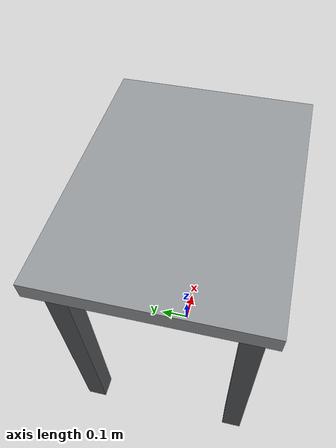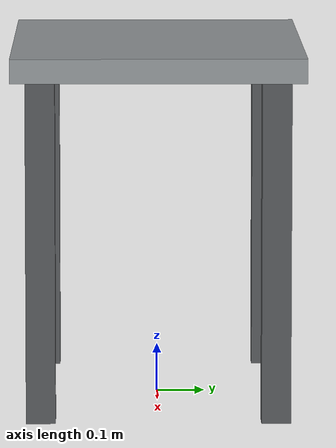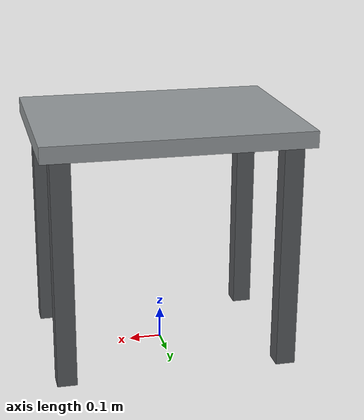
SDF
<?xml version="1.0"?>
<sdf version="1.9">
  <model name="work_table">
    <static>true</static>
    <link name="table_link">
      <!-- Research-cell bench: 0.80 m x 0.60 m top, 0.05 m thick, with a 0.75 m work surface. -->
      <collision name="table_collision">
        <pose>0 0 0.725 0 0 0</pose>
        <geometry><box><size>0.80 0.60 0.05</size></box></geometry>
        <surface>
          <friction><ode><mu>0.8</mu><mu2>0.8</mu2></ode></friction>
        </surface>
      </collision>
      <visual name="tabletop_visual">
        <pose>0 0 0.725 0 0 0</pose>
        <geometry><box><size>0.80 0.60 0.05</size></box></geometry>
        <material>
          <ambient>0.45 0.47 0.48 1</ambient>
          <diffuse>0.58 0.60 0.61 1</diffuse>
          <specular>0.15 0.15 0.15 1</specular>
        </material>
      </visual>

      <collision name="leg_front_left_collision">
        <pose>0.34 0.24 0.35 0 0 0</pose>
        <geometry><box><size>0.06 0.06 0.70</size></box></geometry>
      </collision>
      <visual name="leg_front_left_visual">
        <pose>0.34 0.24 0.35 0 0 0</pose>
        <geometry><box><size>0.06 0.06 0.70</size></box></geometry>
        <material><ambient>0.28 0.29 0.30 1</ambient><diffuse>0.34 0.35 0.36 1</diffuse></material>
      </visual>

      <collision name="leg_front_right_collision">
        <pose>0.34 -0.24 0.35 0 0 0</pose>
        <geometry><box><size>0.06 0.06 0.70</size></box></geometry>
      </collision>
      <visual name="leg_front_right_visual">
        <pose>0.34 -0.24 0.35 0 0 0</pose>
        <geometry><box><size>0.06 0.06 0.70</size></box></geometry>
        <material><ambient>0.28 0.29 0.30 1</ambient><diffuse>0.34 0.35 0.36 1</diffuse></material>
      </visual>

      <collision name="leg_rear_left_collision">
        <pose>-0.34 0.24 0.35 0 0 0</pose>
        <geometry><box><size>0.06 0.06 0.70</size></box></geometry>
      </collision>
      <visual name="leg_rear_left_visual">
        <pose>-0.34 0.24 0.35 0 0 0</pose>
        <geometry><box><size>0.06 0.06 0.70</size></box></geometry>
        <material><ambient>0.28 0.29 0.30 1</ambient><diffuse>0.34 0.35 0.36 1</diffuse></material>
      </visual>

      <collision name="leg_rear_right_collision">
        <pose>-0.34 -0.24 0.35 0 0 0</pose>
        <geometry><box><size>0.06 0.06 0.70</size></box></geometry>
      </collision>
      <visual name="leg_rear_right_visual">
        <pose>-0.34 -0.24 0.35 0 0 0</pose>
        <geometry><box><size>0.06 0.06 0.70</size></box></geometry>
        <material><ambient>0.28 0.29 0.30 1</ambient><diffuse>0.34 0.35 0.36 1</diffuse></material>
      </visual>
    </link>
  </model>
</sdf>
